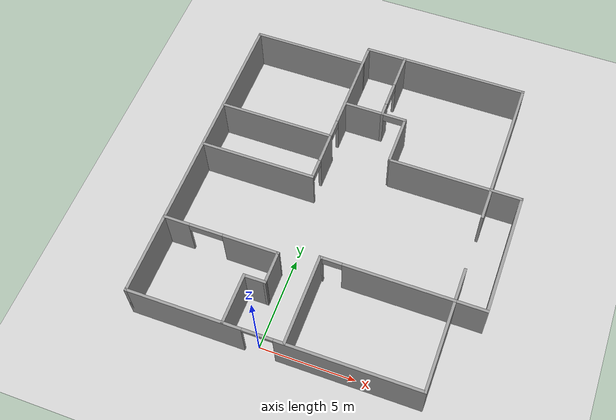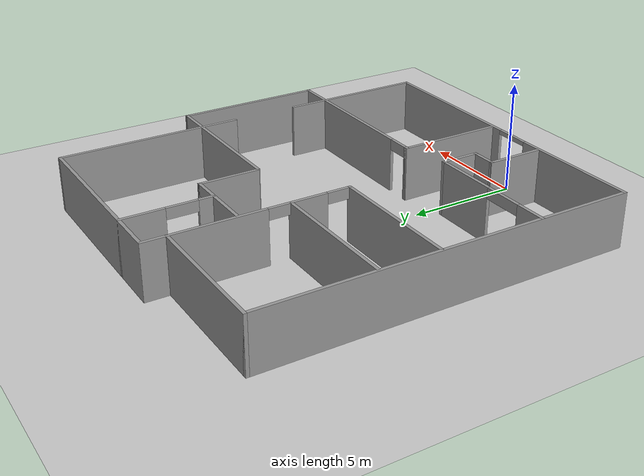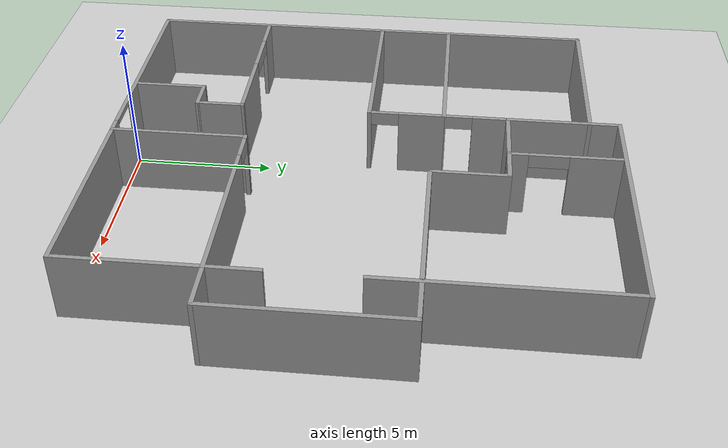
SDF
<sdf version="1.6">
 <world name="default">
  <light name="sun" type="directional">
   <pose>0 0 10 0 -0 0</pose>
   <diffuse>0.8 0.8 0.8 1</diffuse>
   <specular>0.1 0.1 0.1 1</specular>
   <attenuation>
    <range>1000</range>
    <constant>0.9</constant>
    <linear>0.01</linear>
    <quadratic>0.001</quadratic>
   </attenuation>
   <direction>-0.5 0.5 -1</direction>
  </light>
  <model name="ground_plane">
   <static>1</static>
   <link name="link">
    <collision name="collision">
     <geometry><plane><normal>0 0 1</normal><size>100 100</size></plane></geometry>
     <surface><friction><ode><mu>100</mu><mu2>50</mu2></ode></friction></surface>
    </collision>
    <visual name="visual">
     <cast_shadows>0</cast_shadows>
     <geometry><plane><normal>0 0 1</normal><size>100 100</size></plane></geometry>
     <material>
      <script><uri>file://media/materials/scripts/gazebo.material</uri><name>Gazebo/Grey</name></script>
     </material>
    </visual>
   </link>
  </model>
  <gravity>0 0 -9.8</gravity>
  <magnetic_field>6e-06 2.3e-05 -4.2e-05</magnetic_field>
  <atmosphere type="adiabatic"/>
  <physics name="default_physics" default="0" type="ode">
   <max_step_size>0.001</max_step_size>
   <real_time_factor>1</real_time_factor>
   <real_time_update_rate>1000</real_time_update_rate>
  </physics>
  <scene><ambient>0.4 0.4 0.4 1</ambient><background>0.7 0.7 0.7 1</background><shadows>1</shadows></scene>
  <spherical_coordinates>
   <surface_model>EARTH_WGS84</surface_model>
   <latitude_deg>0</latitude_deg>
   <longitude_deg>0</longitude_deg>
   <elevation>0</elevation>
   <heading_deg>0</heading_deg>
  </spherical_coordinates>
  <model name="guid_home">
   <pose>1.70216 8.70881 0 0 -0 0</pose>
   <link name="Wall_57">
    <collision name="Wall_57_Collision">
     <geometry><box><size>9.006 0.15 2.5</size></box></geometry>
     <pose>0 0 1.25 0 -0 0</pose>
    </collision>
    <visual name="Wall_57_Visual">
     <pose>0 0 1.25 0 -0 0</pose>
     <geometry><box><size>9.006 0.15 2.5</size></box></geometry>
     <material>
      <script><uri>file://media/materials/scripts/gazebo.material</uri><name>Gazebo/Grey</name></script>
      <ambient>1 1 1 1</ambient>
     </material>
    </visual>
    <pose>2.272 9 0 0 -0 3.14159</pose>
   </link>
   <link name="Wall_59">
    <pose>-0.8 -9 0 0 -0 0</pose>
    <visual name="Wall_59_Visual_0">
     <pose>-4.54129 0 1.25 0 -0 0</pose>
     <geometry><box><size>6.06743 0.15 2.5</size></box></geometry>
     <material>
      <script><uri>file://media/materials/scripts/gazebo.material</uri><name>Gazebo/Grey</name></script>
      <ambient>1 1 1 1</ambient>
     </material>
    </visual>
    <collision name="Wall_59_Collision_0">
     <geometry><box><size>6.06743 0.15 2.5</size></box></geometry>
     <pose>-4.54129 0 1.25 0 -0 0</pose>
    </collision>
    <visual name="Wall_59_Visual_1">
     <pose>3.83371 0 1.25 0 -0 0</pose>
     <geometry><box><size>7.48257 0.15 2.5</size></box></geometry>
     <material>
      <script><uri>file://media/materials/scripts/gazebo.material</uri><name>Gazebo/Grey</name></script>
      <ambient>1 1 1 1</ambient>
     </material>
    </visual>
    <collision name="Wall_59_Collision_1">
     <geometry><box><size>7.48257 0.15 2.5</size></box></geometry>
     <pose>3.83371 0 1.25 0 -0 0</pose>
    </collision>
    <visual name="Wall_59_Visual_2">
     <pose>-0.707573 0 2.4 0 -0 0</pose>
     <geometry><box><size>1.6 0.15 0.2</size></box></geometry>
     <material>
      <script><uri>file://media/materials/scripts/gazebo.material</uri><name>Gazebo/Grey</name></script>
      <ambient>1 1 1 1</ambient>
     </material>
    </visual>
    <collision name="Wall_59_Collision_2">
     <geometry><box><size>1.6 0.15 0.2</size></box></geometry>
     <pose>-0.707573 0 2.4 0 -0 0</pose>
    </collision>
   </link>
   <link name="Wall_60">
    <pose>6.7 0 0 0 -0 1.5708</pose>
    <visual name="Wall_60_Visual_0">
     <pose>-5.72605 0 1.25 0 -0 0</pose>
     <geometry><box><size>6.69789 0.15 2.5</size></box></geometry>
     <material>
      <script><uri>file://media/materials/scripts/gazebo.material</uri><name>Gazebo/Grey</name></script>
      <ambient>1 1 1 1</ambient>
     </material>
    </visual>
    <collision name="Wall_60_Collision_0">
     <geometry><box><size>6.69789 0.15 2.5</size></box></geometry>
     <pose>-5.72605 0 1.25 0 -0 0</pose>
    </collision>
    <visual name="Wall_60_Visual_1">
     <pose>4.84894 0 1.25 0 -0 0</pose>
     <geometry><box><size>8.45211 0.15 2.5</size></box></geometry>
     <material>
      <script><uri>file://media/materials/scripts/gazebo.material</uri><name>Gazebo/Grey</name></script>
      <ambient>1 1 1 1</ambient>
     </material>
    </visual>
    <collision name="Wall_60_Collision_1">
     <geometry><box><size>8.45211 0.15 2.5</size></box></geometry>
     <pose>4.84894 0 1.25 0 -0 0</pose>
    </collision>
   </link>
   <link name="Wall_64">
    <collision name="Wall_64_Collision">
     <geometry><box><size>2.75 0.15 2.5</size></box></geometry>
     <pose>0 0 1.25 0 -0 0</pose>
    </collision>
    <visual name="Wall_64_Visual">
     <pose>0 0 1.25 0 -0 0</pose>
     <geometry><box><size>2.75 0.15 2.5</size></box></geometry>
     <material>
      <script><uri>file://media/materials/scripts/gazebo.material</uri><name>Gazebo/Grey</name></script>
      <ambient>1 1 1 1</ambient>
     </material>
    </visual>
    <pose>-3.2798 -7.66822 0 0 -0 1.5708</pose>
   </link>
   <link name="Wall_65">
    <collision name="Wall_65_Collision">
     <geometry><box><size>1.25 0.15 2.5</size></box></geometry>
     <pose>0 0 1.25 0 -0 0</pose>
    </collision>
    <visual name="Wall_65_Visual">
     <pose>0 0 1.25 0 -0 0</pose>
     <geometry><box><size>1.25 0.15 2.5</size></box></geometry>
     <material>
      <script><uri>file://media/materials/scripts/gazebo.material</uri><name>Gazebo/Grey</name></script>
      <ambient>1 1 1 1</ambient>
     </material>
    </visual>
    <pose>-2.7298 -6.36822 0 0 -0 0</pose>
   </link>
   <link name="Wall_66">
    <collision name="Wall_66_Collision">
     <geometry><box><size>1.82323 0.15 2.5</size></box></geometry>
     <pose>0 0 1.25 0 -0 0</pose>
    </collision>
    <visual name="Wall_66_Visual">
     <pose>0 0 1.25 0 -0 0</pose>
     <geometry><box><size>1.82323 0.15 2.5</size></box></geometry>
     <material>
      <script><uri>file://media/materials/scripts/gazebo.material</uri><name>Gazebo/Grey</name></script>
      <ambient>1 1 1 1</ambient>
     </material>
    </visual>
    <pose>-2.1799 -5.53161 0 0 -0 1.57092</pose>
   </link>
   <link name="Wall_67">
    <pose>-5.24 -4.695 0 0 -0 3.14159</pose>
    <visual name="Wall_67_Visual_0">
     <pose>-1.62211 0 1.25 0 -0 0</pose>
     <geometry><box><size>3.02578 0.15 2.5</size></box></geometry>
     <material>
      <script><uri>file://media/materials/scripts/gazebo.material</uri><name>Gazebo/Grey</name></script>
      <ambient>1 1 1 1</ambient>
     </material>
    </visual>
    <collision name="Wall_67_Collision_0">
     <geometry><box><size>3.02578 0.15 2.5</size></box></geometry>
     <pose>-1.62211 0 1.25 0 -0 0</pose>
    </collision>
    <visual name="Wall_67_Visual_1">
     <pose>2.41289 0 1.25 0 -0 0</pose>
     <geometry><box><size>1.44422 0.15 2.5</size></box></geometry>
     <material>
      <script><uri>file://media/materials/scripts/gazebo.material</uri><name>Gazebo/Grey</name></script>
      <ambient>1 1 1 1</ambient>
     </material>
    </visual>
    <collision name="Wall_67_Collision_1">
     <geometry><box><size>1.44422 0.15 2.5</size></box></geometry>
     <pose>2.41289 0 1.25 0 -0 0</pose>
    </collision>
    <visual name="Wall_67_Visual_2">
     <pose>0.79078 0 2.25 0 -0 0</pose>
     <geometry><box><size>1.8 0.15 0.5</size></box></geometry>
     <material>
      <script><uri>file://media/materials/scripts/gazebo.material</uri><name>Gazebo/Grey</name></script>
      <ambient>1 1 1 1</ambient>
     </material>
    </visual>
    <collision name="Wall_67_Collision_2">
     <geometry><box><size>1.8 0.15 0.5</size></box></geometry>
     <pose>0.79078 0 2.25 0 -0 0</pose>
    </collision>
   </link>
   <link name="Wall_70">
    <collision name="Wall_70_Collision">
     <geometry><box><size>4.919 0.15 2.5</size></box></geometry>
     <pose>0 0 1.25 0 -0 0</pose>
    </collision>
    <visual name="Wall_70_Visual">
     <pose>0 0 1.25 0 -0 0</pose>
     <geometry><box><size>4.919 0.15 2.5</size></box></geometry>
     <material>
      <script><uri>file://media/materials/scripts/gazebo.material</uri><name>Gazebo/Grey</name></script>
      <ambient>1 1 1 1</ambient>
     </material>
    </visual>
    <pose>-0.165 -6.5835 0 0 -0 1.5708</pose>
   </link>
   <link name="Wall_71">
    <pose>3.2675 -4.199 0 0 -0 0</pose>
    <visual name="Wall_71_Visual_0">
     <pose>-3.39622 0 1.25 0 -0 0</pose>
     <geometry><box><size>0.222568 0.15 2.5</size></box></geometry>
     <material>
      <script><uri>file://media/materials/scripts/gazebo.material</uri><name>Gazebo/Grey</name></script>
      <ambient>1 1 1 1</ambient>
     </material>
    </visual>
    <collision name="Wall_71_Collision_0">
     <geometry><box><size>0.222568 0.15 2.5</size></box></geometry>
     <pose>-3.39622 0 1.25 0 -0 0</pose>
    </collision>
    <visual name="Wall_71_Visual_1">
     <pose>0.611284 0 1.25 0 -0 0</pose>
     <geometry><box><size>5.79243 0.15 2.5</size></box></geometry>
     <material>
      <script><uri>file://media/materials/scripts/gazebo.material</uri><name>Gazebo/Grey</name></script>
      <ambient>1 1 1 1</ambient>
     </material>
    </visual>
    <collision name="Wall_71_Collision_1">
     <geometry><box><size>5.79243 0.15 2.5</size></box></geometry>
     <pose>0.611284 0 1.25 0 -0 0</pose>
    </collision>
    <visual name="Wall_71_Visual_2">
     <pose>-2.78493 0 2.25 0 -0 0</pose>
     <geometry><box><size>1 0.15 0.5</size></box></geometry>
     <material>
      <script><uri>file://media/materials/scripts/gazebo.material</uri><name>Gazebo/Grey</name></script>
      <ambient>1 1 1 1</ambient>
     </material>
    </visual>
    <collision name="Wall_71_Collision_2">
     <geometry><box><size>1 0.15 0.5</size></box></geometry>
     <pose>-2.78493 0 2.25 0 -0 0</pose>
    </collision>
   </link>
   <link name="Wall_73">
    <collision name="Wall_73_Collision">
     <geometry><box><size>6.25 0.15 2.5</size></box></geometry>
     <pose>0 0 1.25 0 -0 0</pose>
    </collision>
    <visual name="Wall_73_Visual">
     <pose>0 0 1.25 0 -0 0</pose>
     <geometry><box><size>6.25 0.15 2.5</size></box></geometry>
     <material>
      <script><uri>file://media/materials/scripts/gazebo.material</uri><name>Gazebo/Grey</name></script>
      <ambient>1 1 1 1</ambient>
     </material>
    </visual>
    <pose>-5.20592 0.012957 0 0 -0 1.4e-05</pose>
   </link>
   <link name="Wall_74">
    <pose>-2.156 4.5065 0 0 -0 1.5708</pose>
    <visual name="Wall_74_Visual_0">
     <pose>-4.49785 0 1.25 0 -0 0</pose>
     <geometry><box><size>0.141291 0.15 2.5</size></box></geometry>
     <material>
      <script><uri>file://media/materials/scripts/gazebo.material</uri><name>Gazebo/Grey</name></script>
      <ambient>1 1 1 1</ambient>
     </material>
    </visual>
    <collision name="Wall_74_Collision_0">
     <geometry><box><size>0.141291 0.15 2.5</size></box></geometry>
     <pose>-4.49785 0 1.25 0 -0 0</pose>
    </collision>
    <visual name="Wall_74_Visual_1">
     <pose>-2.59217 0 1.25 0 -0 0</pose>
     <geometry><box><size>1.67007 0.15 2.5</size></box></geometry>
     <material>
      <script><uri>file://media/materials/scripts/gazebo.material</uri><name>Gazebo/Grey</name></script>
      <ambient>1 1 1 1</ambient>
     </material>
    </visual>
    <collision name="Wall_74_Collision_1">
     <geometry><box><size>1.67007 0.15 2.5</size></box></geometry>
     <pose>-2.59217 0 1.25 0 -0 0</pose>
    </collision>
    <visual name="Wall_74_Visual_2">
     <pose>1.90568 0 1.25 0 -0 0</pose>
     <geometry><box><size>5.32564 0.15 2.5</size></box></geometry>
     <material>
      <script><uri>file://media/materials/scripts/gazebo.material</uri><name>Gazebo/Grey</name></script>
      <ambient>1 1 1 1</ambient>
     </material>
    </visual>
    <collision name="Wall_74_Collision_2">
     <geometry><box><size>5.32564 0.15 2.5</size></box></geometry>
     <pose>1.90568 0 1.25 0 -0 0</pose>
    </collision>
    <visual name="Wall_74_Visual_3">
     <pose>-3.92721 0 2.25 0 -0 0</pose>
     <geometry><box><size>1 0.15 0.5</size></box></geometry>
     <material>
      <script><uri>file://media/materials/scripts/gazebo.material</uri><name>Gazebo/Grey</name></script>
      <ambient>1 1 1 1</ambient>
     </material>
    </visual>
    <collision name="Wall_74_Collision_3">
     <geometry><box><size>1 0.15 0.5</size></box></geometry>
     <pose>-3.92721 0 2.25 0 -0 0</pose>
    </collision>
    <visual name="Wall_74_Visual_4">
     <pose>-1.25714 0 2.25 0 -0 0</pose>
     <geometry><box><size>1 0.15 0.5</size></box></geometry>
     <material>
      <script><uri>file://media/materials/scripts/gazebo.material</uri><name>Gazebo/Grey</name></script>
      <ambient>1 1 1 1</ambient>
     </material>
    </visual>
    <collision name="Wall_74_Collision_4">
     <geometry><box><size>1 0.15 0.5</size></box></geometry>
     <pose>-1.25714 0 2.25 0 -0 0</pose>
    </collision>
   </link>
   <link name="Wall_76">
    <collision name="Wall_76_Collision">
     <geometry><box><size>6.209 0.15 2.5</size></box></geometry>
     <pose>0 0 1.25 0 -0 0</pose>
    </collision>
    <visual name="Wall_76_Visual">
     <pose>0 0 1.25 0 -0 0</pose>
     <geometry><box><size>6.209 0.15 2.5</size></box></geometry>
     <material>
      <script><uri>file://media/materials/scripts/gazebo.material</uri><name>Gazebo/Grey</name></script>
      <ambient>1 1 1 1</ambient>
     </material>
    </visual>
    <pose>-5.1855 2.723 0 0 -0 0</pose>
   </link>
   <link name="Wall_78">
    <collision name="Wall_78_Collision">
     <geometry><box><size>6.294 0.15 2.5</size></box></geometry>
     <pose>0 0 1.25 0 -0 0</pose>
    </collision>
    <visual name="Wall_78_Visual">
     <pose>0 0 1.25 0 -0 0</pose>
     <geometry><box><size>6.294 0.15 2.5</size></box></geometry>
     <material>
      <script><uri>file://media/materials/scripts/gazebo.material</uri><name>Gazebo/Grey</name></script>
      <ambient>1 1 1 1</ambient>
     </material>
    </visual>
    <pose>-5.228 7.942 0 0 -0 0</pose>
   </link>
   <link name="Wall_80">
    <collision name="Wall_80_Collision">
     <geometry><box><size>5.518 0.15 2.5</size></box></geometry>
     <pose>0 0 1.25 0 -0 0</pose>
    </collision>
    <visual name="Wall_80_Visual">
     <pose>0 0 1.25 0 -0 0</pose>
     <geometry><box><size>5.518 0.15 2.5</size></box></geometry>
     <material>
      <script><uri>file://media/materials/scripts/gazebo.material</uri><name>Gazebo/Grey</name></script>
      <ambient>1 1 1 1</ambient>
     </material>
    </visual>
    <pose>4.016 2.359 0 0 -0 0</pose>
   </link>
   <link name="Wall_82">
    <collision name="Wall_82_Collision">
     <geometry><box><size>1.75 0.15 2.5</size></box></geometry>
     <pose>0 0 1.25 0 -0 0</pose>
    </collision>
    <visual name="Wall_82_Visual">
     <pose>0 0 1.25 0 -0 0</pose>
     <geometry><box><size>1.75 0.15 2.5</size></box></geometry>
     <material>
      <script><uri>file://media/materials/scripts/gazebo.material</uri><name>Gazebo/Grey</name></script>
      <ambient>1 1 1 1</ambient>
     </material>
    </visual>
    <pose>7.5 2.359 0 0 -0 0</pose>
   </link>
   <link name="Wall_83">
    <collision name="Wall_83_Collision">
     <geometry><box><size>6.708 0.15 2.5</size></box></geometry>
     <pose>0 0 1.25 0 -0 0</pose>
    </collision>
    <visual name="Wall_83_Visual">
     <pose>0 0 1.25 0 -0 0</pose>
     <geometry><box><size>6.708 0.15 2.5</size></box></geometry>
     <material>
      <script><uri>file://media/materials/scripts/gazebo.material</uri><name>Gazebo/Grey</name></script>
      <ambient>1 1 1 1</ambient>
     </material>
    </visual>
    <pose>8.3 -0.92 0 0 0 -1.5708</pose>
   </link>
   <link name="Wall_84">
    <collision name="Wall_84_Collision">
     <geometry><box><size>1.75 0.15 2.5</size></box></geometry>
     <pose>0 0 1.25 0 -0 0</pose>
    </collision>
    <visual name="Wall_84_Visual">
     <pose>0 0 1.25 0 -0 0</pose>
     <geometry><box><size>1.75 0.15 2.5</size></box></geometry>
     <material>
      <script><uri>file://media/materials/scripts/gazebo.material</uri><name>Gazebo/Grey</name></script>
      <ambient>1 1 1 1</ambient>
     </material>
    </visual>
    <pose>7.5 -4.199 0 0 -0 3.14159</pose>
   </link>
   <link name="Wall_86">
    <collision name="Wall_86_Collision">
     <geometry><box><size>17.092 0.15 2.5</size></box></geometry>
     <pose>0 0 1.25 0 -0 0</pose>
    </collision>
    <visual name="Wall_86_Visual">
     <pose>0 0 1.25 0 -0 0</pose>
     <geometry><box><size>17.092 0.15 2.5</size></box></geometry>
     <material>
      <script><uri>file://media/materials/scripts/gazebo.material</uri><name>Gazebo/Grey</name></script>
      <ambient>1 1 1 1</ambient>
     </material>
    </visual>
    <pose>-8.3 -0.529 0 0 0 -1.5708</pose>
   </link>
   <link name="Wall_88">
    <pose>-0.431589 5.0294 0 0 -0 0</pose>
    <visual name="Wall_88_Visual_0">
     <pose>-0.682238 0 1.25 0 -0 0</pose>
     <geometry><box><size>2.13552 0.15 2.5</size></box></geometry>
     <material>
      <script><uri>file://media/materials/scripts/gazebo.material</uri><name>Gazebo/Grey</name></script>
      <ambient>1 1 1 1</ambient>
     </material>
    </visual>
    <collision name="Wall_88_Collision_0">
     <geometry><box><size>2.13552 0.15 2.5</size></box></geometry>
     <pose>-0.682238 0 1.25 0 -0 0</pose>
    </collision>
    <visual name="Wall_88_Visual_1">
     <pose>1.71776 0 1.25 0 -0 0</pose>
     <geometry><box><size>0.064476 0.15 2.5</size></box></geometry>
     <material>
      <script><uri>file://media/materials/scripts/gazebo.material</uri><name>Gazebo/Grey</name></script>
      <ambient>1 1 1 1</ambient>
     </material>
    </visual>
    <collision name="Wall_88_Collision_1">
     <geometry><box><size>0.064476 0.15 2.5</size></box></geometry>
     <pose>1.71776 0 1.25 0 -0 0</pose>
    </collision>
    <visual name="Wall_88_Visual_2">
     <pose>1.03552 0 2.25 0 -0 0</pose>
     <geometry><box><size>1.3 0.15 0.5</size></box></geometry>
     <material>
      <script><uri>file://media/materials/scripts/gazebo.material</uri><name>Gazebo/Grey</name></script>
      <ambient>1 1 1 1</ambient>
     </material>
    </visual>
    <collision name="Wall_88_Collision_2">
     <geometry><box><size>1.3 0.15 0.5</size></box></geometry>
     <pose>1.03552 0 2.25 0 -0 0</pose>
    </collision>
   </link>
   <link name="Wall_89">
    <collision name="Wall_89_Collision">
     <geometry><box><size>2.75 0.15 2.5</size></box></geometry>
     <pose>0 0 1.25 0 -0 0</pose>
    </collision>
    <visual name="Wall_89_Visual">
     <pose>0 0 1.25 0 -0 0</pose>
     <geometry><box><size>2.75 0.15 2.5</size></box></geometry>
     <material>
      <script><uri>file://media/materials/scripts/gazebo.material</uri><name>Gazebo/Grey</name></script>
      <ambient>1 1 1 1</ambient>
     </material>
    </visual>
    <pose>1.24341 3.7294 0 0 0 -1.5708</pose>
   </link>
   <link name="Wall_91">
    <pose>-0.043 7.0145 0 0 -0 1.5708</pose>
    <visual name="Wall_91_Visual_0">
     <pose>-1.68505 0 1.25 0 -0 0</pose>
     <geometry><box><size>0.750894 0.15 2.5</size></box></geometry>
     <material>
      <script><uri>file://media/materials/scripts/gazebo.material</uri><name>Gazebo/Grey</name></script>
      <ambient>1 1 1 1</ambient>
     </material>
    </visual>
    <collision name="Wall_91_Collision_0">
     <geometry><box><size>0.750894 0.15 2.5</size></box></geometry>
     <pose>-1.68505 0 1.25 0 -0 0</pose>
    </collision>
    <visual name="Wall_91_Visual_1">
     <pose>1.07545 0 1.25 0 -0 0</pose>
     <geometry><box><size>1.97011 0.15 2.5</size></box></geometry>
     <material>
      <script><uri>file://media/materials/scripts/gazebo.material</uri><name>Gazebo/Grey</name></script>
      <ambient>1 1 1 1</ambient>
     </material>
    </visual>
    <collision name="Wall_91_Collision_1">
     <geometry><box><size>1.97011 0.15 2.5</size></box></geometry>
     <pose>1.07545 0 1.25 0 -0 0</pose>
    </collision>
    <visual name="Wall_91_Visual_2">
     <pose>-0.609606 0 2.25 0 -0 0</pose>
     <geometry><box><size>1.4 0.15 0.5</size></box></geometry>
     <material>
      <script><uri>file://media/materials/scripts/gazebo.material</uri><name>Gazebo/Grey</name></script>
      <ambient>1 1 1 1</ambient>
     </material>
    </visual>
    <collision name="Wall_91_Collision_2">
     <geometry><box><size>1.4 0.15 0.5</size></box></geometry>
     <pose>-0.609606 0 2.25 0 -0 0</pose>
    </collision>
   </link>
   <static>1</static>
  </model>
 </world>
</sdf>
